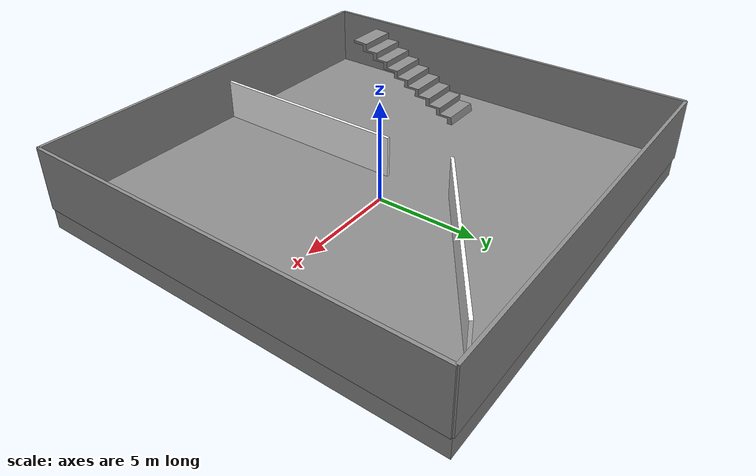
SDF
<sdf version="1.10">
 <world name="warehouse_world">
  <plugin name="gz::sim::systems::Physics" filename="gz-sim-physics-system"/>
  <plugin name="gz::sim::systems::UserCommands" filename="gz-sim-user-commands-system"/>
  <plugin name="gz::sim::systems::SceneBroadcaster" filename="gz-sim-scene-broadcaster-system"/>
  <plugin name="DynamicWorldCloud" filename="DynamicWorldCloud">
   <point_spacing>0.25</point_spacing>
   <update_rate>10</update_rate>
   <pcd_save_interval>0.0</pcd_save_interval>
   <publish_enabled>true</publish_enabled>
   <max_points_per_publish>50000</max_points_per_publish>
   <pcd_directory>./pcd</pcd_directory>
   <transport_topic>/world/dynamic_cloud</transport_topic>
  </plugin>
  <gravity>0 0 -9.8000000000000007</gravity>
  <magnetic_field>5.5644999999999998e-06 2.2875799999999999e-05 -4.2388400000000002e-05</magnetic_field>
  <atmosphere type="adiabatic"/>
  <physics type="ode">
   <max_step_size>0.001</max_step_size>
   <real_time_factor>1</real_time_factor>
   <real_time_update_rate>1000</real_time_update_rate>
  </physics>
  <scene>
   <ambient>0.400000006 0.400000006 0.400000006 1</ambient>
   <background>0.699999988 0.699999988 0.699999988 1</background>
   <shadows>true</shadows>
  </scene>
  <include>
   <uri>file:///home/ruilun/project/navigation_project/gazebo/maps/models/floor_base</uri>
   <name>floor_base</name>
   <static>true</static>
  </include>
  <include>
   <uri>file:///home/ruilun/project/navigation_project/gazebo/maps/models/wall_20x0.15x3</uri>
   <name>wall_20x0.15x3</name>
   <pose>0 10 1 0 0 0</pose>
   <static>true</static>
  </include>
  <include>
   <uri>file:///home/ruilun/project/navigation_project/gazebo/maps/models/wall_20x0.15x3</uri>
   <name>wall_20x0.15x3_0</name>
   <pose>-10 0 1 0 0 1.5699999999999998</pose>
   <static>true</static>
  </include>
  <include>
   <uri>file:///home/ruilun/project/navigation_project/gazebo/maps/models/wall_20x0.15x3</uri>
   <name>wall_20x0.15x3_1</name>
   <pose>10 0 1 0 0 1.5700000000000001</pose>
   <static>true</static>
  </include>
  <include>
   <uri>file:///home/ruilun/project/navigation_project/gazebo/maps/models/wall_20x0.15x3</uri>
   <name>wall_20x0.15x3_2</name>
   <pose>0 -10 1 0 0 0</pose>
   <static>true</static>
  </include>
  <include>
   <uri>file:///home/ruilun/project/navigation_project/gazebo/maps/models/stair</uri>
   <name>stair</name>
   <pose>-7.5 -3.5000000000000004 1 0 0 1.5700000000000001</pose>
   <static>true</static>
  </include>
  <include>
   <uri>file:///home/ruilun/project/navigation_project/gazebo/maps/models/wall_10x0.15x3</uri>
   <name>wall_10x0.15x3</name>
   <pose>-0.61228889226913463 -4.9785366058349627 0 0 0 1.5700000841906603</pose>
   <static>true</static>
  </include>
  <include>
   <uri>file:///home/ruilun/project/navigation_project/gazebo/maps/models/wall_10x0.15x3</uri>
   <name>wall_10x0.15x3_0</name>
   <pose>3.2311499118804923 6.057741641998291 0 0 0 0.61059997807368671</pose>
   <static>true</static>
  </include>
  <light name="sun" type="directional">
   <pose>0 0 10 0 0 0</pose>
   <intensity>1</intensity>
   <direction>-0.5 0.10000000000000001 -0.90000000000000002</direction>
   <diffuse>0.800000012 0.800000012 0.800000012 1</diffuse>
   <specular>0.200000003 0.200000003 0.200000003 1</specular>
   <attenuation>
    <range>1000</range>
    <linear>0.01</linear>
    <constant>0.90000000000000002</constant>
    <quadratic>0.001</quadratic>
   </attenuation>
   <spot><inner_angle>0</inner_angle><outer_angle>0</outer_angle><falloff>0</falloff></spot>
  </light>
 </world>
</sdf>

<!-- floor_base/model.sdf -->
<sdf version="1.11">
  <model name="floor_base">
    <link name="body">
      <inertial auto="true" />
      <collision name="collision">
        <density>10.0</density>
        <geometry>
          <mesh optimization="convex_decomposition">
            <uri>models://floor_base/mesh.stl</uri>
          </mesh>
        </geometry>
      </collision>
      <visual name="visual">
        <geometry>
          <mesh>
            <uri>models://floor_base/mesh.stl</uri>
          </mesh>
        </geometry>
          <material>
            <ambient>0.45 0.45 0.45 1</ambient>
            <diffuse>0.55 0.55 0.55 1</diffuse>
            <specular>0.15 0.15 0.15 1</specular>
          </material>
      </visual>
    </link>
  </model>
</sdf>

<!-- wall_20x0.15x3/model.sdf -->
<sdf version="1.11">
  <model name="wall_20x0.15x3">
    <static>true</static>
    <link name="body">
      <inertial>
        <mass>1.0</mass>
        <inertia>
          <ixx>1.0</ixx>
          <iyy>1.0</iyy>
          <izz>1.0</izz>
          <ixy>0.0</ixy>
          <ixz>0.0</ixz>
          <iyz>0.0</iyz>
        </inertia>
      </inertial>
      <collision name="collision">
        <density>10.0</density>
        <geometry>
          <mesh optimization="convex_decomposition">
            <uri>models://wall_20x0.15x3/mesh.stl</uri>
          </mesh>
        </geometry>
      </collision>
      <visual name="visual">
        <geometry>
          <mesh>
            <uri>models://wall_20x0.15x3/mesh.stl</uri>
          </mesh>
        </geometry>
          <material>
            <ambient>0.45 0.45 0.45 1</ambient>
            <diffuse>0.55 0.55 0.55 1</diffuse>
            <specular>0.15 0.15 0.15 1</specular>
          </material>
      </visual>
    </link>
  </model>
</sdf>

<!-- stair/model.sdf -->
<sdf version="1.11">
  <model name="stair">
    <static>true</static>
    <link name="body">
      <inertial>
        <mass>1.0</mass>
        <inertia>
          <ixx>1.0</ixx>
          <iyy>1.0</iyy>
          <izz>1.0</izz>
          <ixy>0.0</ixy>
          <ixz>0.0</ixz>
          <iyz>0.0</iyz>
        </inertia>
      </inertial>
      <collision name="collision">
        <density>10.0</density>
        <geometry>
          <mesh optimization="convex_decomposition">
            <uri>models://stair/mesh.stl</uri>
          </mesh>
        </geometry>
      </collision>
      <visual name="visual">
        <geometry>
          <mesh>
            <uri>models://stair/mesh.stl</uri>
          </mesh>
        </geometry>
          <material>
            <ambient>0.45 0.45 0.45 1</ambient>
            <diffuse>0.55 0.55 0.55 1</diffuse>
            <specular>0.15 0.15 0.15 1</specular>
          </material>
      </visual>
    </link>
  </model>
</sdf>

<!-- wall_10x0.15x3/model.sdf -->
<sdf version="1.11">
  <model name="wall_10x0.15x3">
    <static>true</static>
    <link name="body">
      <inertial>
        <mass>1.0</mass>
        <inertia>
          <ixx>1.0</ixx>
          <iyy>1.0</iyy>
          <izz>1.0</izz>
          <ixy>0.0</ixy>
          <ixz>0.0</ixz>
          <iyz>0.0</iyz>
        </inertia>
      </inertial>
      <collision name="collision">
        <density>10.0</density>
        <geometry>
          <mesh optimization="convex_decomposition">
            <uri>models://wall_10x0.15x3/mesh.stl</uri>
          </mesh>
        </geometry>
      </collision>
      <visual name="visual">
        <geometry>
          <mesh>
            <uri>models://wall_10x0.15x3/mesh.stl</uri>
          </mesh>
        </geometry>
          <material>
            <ambient>1 1 1 1</ambient>
            <diffuse>1 1 1 1</diffuse>
            <specular>0.2 0.2 0.2 1</specular>
          </material>
      </visual>
    </link>
  </model>
</sdf>
